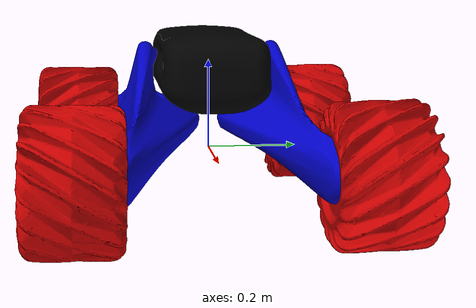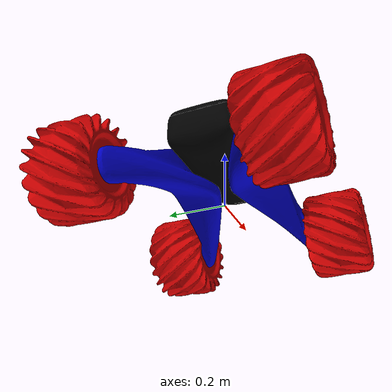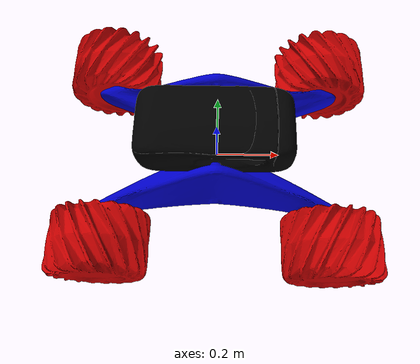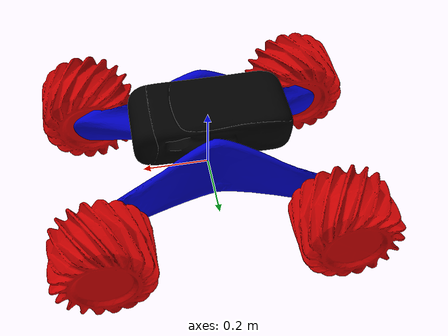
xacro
<?xml version="1.0"?>
<robot name="nimrod"
    xmlns:xacro="http://www.ros.org/wiki/xacro">

    <xacro:include filename="$(find rover_config)/urdf/body.xacro" />

    <!-- World link -->
    <!-- base_footprint is a fictious link(frame) that is on the ground right below base_link origin -->
    <!-- It is necessary as gazebo does not support inertia for the root link -->
    <!-- Do not call it world as it is reserved for robot that must be fixed to the world -->

    <link name="base_link">
    </link>

    <gazebo reference="base_link">
        <turnGravityOff>false</turnGravityOff>
    </gazebo>

    <!--   rover body macro   -->
    <body parent="base_link" translateX="0" translateY="0" translateZ="0.1"/>

    <!-- Publishing joint states from Gazebo simulator -->
    <!-- fixed links are not published -->
    <!-- this is required to publish wheel status -->
    <gazebo>
        <plugin name="joint_state_publisher" filename="libgazebo_ros_joint_state_publisher.so">
            <jointName>
            front_left_wheel_joint,
            front_right_wheel_joint,
            back_left_wheel_joint,
            back_right_wheel_joint,
            left_rocker_joint,
            right_rocker_joint
            </jointName>
            <robotNameSpace>/</robotNameSpace>
            <updateRate>100</updateRate>
            <alwaysOn>true</alwaysOn>
        </plugin>
    </gazebo>

    <gazebo>
        <plugin name="gazebo_ros_control" filename="libgazebo_ros_control.so">
            <robotNamespace>/</robotNamespace>
        </plugin>
    </gazebo>

    <gazebo>
        <plugin name="mimic_rocker" filename="libroboticsgroup_gazebo_mimic_joint_plugin.so">
            <joint>left_rocker_joint</joint>
            <mimicJoint>right_rocker_joint</mimicJoint>
            <multiplier>-1</multiplier>
            <hasPID />
        </plugin>
    </gazebo>

</robot>

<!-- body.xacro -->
<robot name="nimrod"
    xmlns:xacro="http://www.ros.org/wiki/xacro">

    <xacro:include filename="$(find rover_config)/urdf/wheel.xacro" />

    <!-- Defining the colors used in this robot -->

    <material name="Black">
        <color rgba="0.0 0.0 0.0 1.0"/>
    </material>

    <material name="Red">
        <color rgba="0.8 0.0 0.0 1.0"/>
    </material>

    <material name="White">
        <color rgba="1.0 1.0 1.0 1.0"/>
    </material>

    <material name="Blue">
        <color rgba="0.0 0.0 0.8 1.0"/>
    </material>

    <!-- Property list -->
    <!-- All units in m-kg-s-radians unit system -->

    <xacro:property name="M_PI" value="3.1415926535897931" />
    <xacro:property name="M_PI_2" value="1.570796327" />
    <xacro:property name="DEG_TO_RAD" value="0.017453293" />

    <!-- Main body length height width -->

    <xacro:property name="base_height" value="0.2" />
    <xacro:property name="base_width" value="0.2" />
    <xacro:property name="base_lenght" value="0.5" />
    <xacro:property name="base_mass" value="20.0" />

    <xacro:property name="rocker_height" value="0.1" />
    <xacro:property name="rocker_width" value="0.1" />
    <xacro:property name="rocker_lenght" value="0.7" />
    <xacro:property name="rocker_mass" value="2.0" />
    <xacro:property name="rocker_offsetZ" value="0" />

    <xacro:property name="camera_size" value="0.05" />

    <!-- Macro for calculating inertia of cylinder -->

    <xacro:macro name="cylinder_inertia" params="m r h">
        <inertia ixx="${ m * ( 3 * r*r + h*h ) / 12}" ixy="0" ixz="0" iyy="${ m * ( 3 * r*r + h*h ) / 12}" iyz="0" izz="${ m * r / 2}" />
    </xacro:macro>

    <!-- Macro for calculating inertia of a box -->

    <xacro:macro name="box_inertia" params="m x y z">
        <inertia ixx="${0.0833333 * m * (y*y + z*z)}" ixy="0.0" ixz="0.0" iyy="${0.0833333 * m * (x*x + z*z)}" iyz="0.0" izz="${0.0833333 * m * (x*x + y*y)}" />
    </xacro:macro>

    <!-- Base link -->
    <!-- Actual body/chassis of the robot -->

    <xacro:macro name="body" params="parent translateX translateY translateZ">

        <joint name="glue_robot_to_world" type="fixed">
            <origin xyz="${translateX} ${translateY} ${translateZ}" rpy="0 0 0" />
            <parent link="${parent}" />
            <child link="chassis" />
        </joint>

        <link name="chassis">
            <inertial>
                <mass value="${base_mass}" />
                <!-- the3x3 rotational inertia matrix -->
                <box_inertia m="${base_mass}" x="${base_lenght}" y="${base_width}" z="${base_height}" />
                <origin xyz="0 0 0" />
            </inertial>
            <visual>
                <origin xyz="0 0 0" rpy="0 0 ${radians(-90)}" />
                <geometry>
                    <mesh filename="package://rover_config/rover_collada/Body_lowPoly.dae"/>
                </geometry>
                <material name="Black" />
            </visual>
            <collision>
                <origin xyz="0 0 0" rpy="0 0 ${radians(-90)}" />
                <geometry>
                    <mesh filename="package://rover_config/rover_collada/Body_lowPoly.dae"/>
                </geometry>
                <material name="Black" />
            </collision>
        </link>

        <gazebo reference="chassis">
            <turnGravityOff>false</turnGravityOff>
        </gazebo>

        <xacro:macro name="rocker" params="side parent translateX translateY translateZ flipY">
            <link name="${side}_rocker">
                <visual>
                    <origin xyz="0 0 ${-rocker_offsetZ}" rpy="0 0 ${-90 * DEG_TO_RAD}"/>
                    <geometry>
                        <mesh filename="package://rover_config/rover_collada/Rocker_lowPoly.dae" scale="${flipY} 1 1"/>
                    </geometry>
                    <material name="Blue" />
                </visual>
                <collision>
                    <origin xyz="0 0 ${-rocker_offsetZ}" rpy="0 0 ${-90 * DEG_TO_RAD}"/>
                    <geometry>
                        <mesh filename="package://rover_config/rover_collada/Rocker_lowPoly.dae" scale="${flipY} 1 1"/>
                    </geometry>
                    <material name="Blue" />
                </collision>
                <inertial>
                    <mass value="${rocker_mass}" />
                    <origin xyz="0 ${flipY * rocker_width / 2} ${-rocker_offsetZ}" rpy="0 0 0"/>
                    <box_inertia m="${rocker_mass}" x="${rocker_lenght}" y="${rocker_width}" z="${rocker_height}" />
                </inertial>
            </link>

            <joint name="${side}_rocker_joint" type="revolute">
                <origin xyz="${translateX} ${translateY} ${translateZ}" rpy="0.0 0.0 0.0"/>
                <parent link="${parent}"/>
                <child link="${side}_rocker"/>
                <axis xyz="0 1 0"/>
                <dynamics damping="0" friction="0.5"/>
                <limit lower="${-8 * DEG_TO_RAD}" upper="${8 * DEG_TO_RAD}" velocity="1000" effort="1000"/>
            </joint>

            <transmission name="${side}_rocker_joint_trans">
                <type>transmission_interface/SimpleTransmission</type>
                <joint name="${side}_rocker_joint">
                    <hardwareInterface>hardware_interface/PositionJointInterface</hardwareInterface>
                </joint>
                <actuator name="${side}_rocker_joint_motor">
                    <hardwareInterface>hardware_interface/PositionJointInterface</hardwareInterface>
                    <mechanicalReduction>1</mechanicalReduction>
                </actuator>
            </transmission>

            <wheel fb="front" lr="${side}" parent="${side}_rocker" translateX="0.350" translateY="${flipY * 0.300}" translateZ="-0.100" flipY="${flipY}" flipZ="1"/>
            <wheel fb="back" lr="${side}" parent="${side}_rocker" translateX="-0.350" translateY="${flipY * 0.300}" translateZ="-0.100" flipY="${flipY}" flipZ="-1"/>

            <gazebo reference="${side}_rocker">
                <turnGravityOff>false</turnGravityOff>
            </gazebo>

        </xacro:macro>

        <rocker side="left" parent="chassis" translateX="0" translateY="0" translateZ="0" flipY="1" />
        <rocker side="right" parent="chassis" translateX="0" translateY="0" translateZ="0" flipY="-1" />

        <!-- Camera gazebo sensor -->

        <joint name="camera_joint" type="fixed">
            <axis xyz="0 1 0" />
            <origin xyz="${base_lenght / 2 + 2 * camera_size} 0 ${base_height / 2}" rpy="0 0 0"/>
            <parent link="chassis"/>
            <child link="camera_link"/>
        </joint>

        <link name="camera_link">
        </link>

        <link name="camera_link2">
        </link>

        <joint name="camera_joint2" type="fixed">
            <axis xyz="0 1 0" />
            <origin xyz="0 0 0" rpy="${-M_PI_2} 0 ${-M_PI_2}"/>
            <parent link="camera_link"/>
            <child link="camera_link2"/>
        </joint>

        <gazebo reference="camera_link">
            <sensor type="camera" name="camera1">
                <update_rate>30.0</update_rate>
                <camera name="head">
                    <horizontal_fov>${45 * DEG_TO_RAD}</horizontal_fov>
                    <image>
                        <width>2056</width>
                        <height>1542</height>
                        <format>R8G8B8</format>
                    </image>
                    <clip>
                        <near>0.02</near>
                        <far>300</far>
                    </clip>
                    <noise>
                        <type>gaussian</type>
                        <!-- Noise is sampled independently per pixel on each frame.
                That pixel's noise value is added to each of its color
                channels, which at that point lie in the range [0,1]. -->
                        <mean>0.0</mean>
                        <stddev>0.07</stddev>
                    </noise>
                </camera>
                <plugin name="camera_controller" filename="libgazebo_ros_camera.so">
                    <alwaysOn>true</alwaysOn>
                    <updateRate>0.0</updateRate>
                    <cameraName>sensors/camera1</cameraName>
                    <imageTopicName>image_raw</imageTopicName>
                    <cameraInfoTopicName>camera_info</cameraInfoTopicName>
                    <frameName>camera_link2</frameName>
                    <hackBaseline>0.0</hackBaseline>
                    <distortionK1>0.0</distortionK1>
                    <distortionK2>0.0</distortionK2>
                    <distortionK3>0.0</distortionK3>
                    <distortionT1>0.0</distortionT1>
                    <distortionT2>0.0</distortionT2>
                </plugin>
            </sensor>
        </gazebo>

        <!-- IMU plugin sensor -->
        <!-- computed by seperate plugin, without gravity -->
        <gazebo>
            <plugin name="imu_plugin" filename="libgazebo_ros_imu.so">
                <alwaysOn>true</alwaysOn>
                <bodyName>chassis</bodyName>
                <topicName>sensors/imu_plugin</topicName>
                <serviceName>imu_service</serviceName>
                <gaussianNoise>0.0</gaussianNoise>
                <updateRate>20.0</updateRate>
            </plugin>
        </gazebo>

        <!-- IMU gazebo sensor -->
        <!-- computed by gazebo, with gravity -->
        <gazebo reference="chassis">
            <gravity>true</gravity>
            <sensor name="imu_sensor" type="imu">
                <always_on>true</always_on>
                <update_rate>50</update_rate>
                <visualize>true</visualize>
                <topic>__default_topic__</topic>
                <plugin filename="libgazebo_ros_imu_sensor.so" name="imu_plugin">
                    <topicName>sensors/imu_gazebo</topicName>
                    <bodyName>chassis</bodyName>
                    <updateRateHZ>20.0</updateRateHZ>
                    <gaussianNoise>0.0</gaussianNoise>
                    <xyzOffset>0 0 0</xyzOffset>
                    <rpyOffset>0 0 0</rpyOffset>
                    <frameName>chassis</frameName>
                </plugin>
                <pose>0 0 0 0 0 0</pose>
            </sensor>
        </gazebo>

    </xacro:macro>

</robot>

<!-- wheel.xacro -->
<robot name="wheel"
    xmlns:xacro="http://www.ros.org/wiki/xacro">

    <xacro:property name="wheel_radius" value="0.14" />
    <xacro:property name="wheel_width" value="0.2" />
    <xacro:property name="wheel_mass" value="1" />
    <!-- in kg -->

    <xacro:property name="grouser_count" value="20" />

    <!-- Macro for calculating inertia of cylindric wheel -->
    <xacro:macro name="wheel_inertia" params="m r h">
        <inertia ixx="${ m * ( 3 * r*r + h*h ) / 12}" ixy="0" ixz="0" iyy="${ m * ( 3 * r*r + h*h ) / 12}" iyz="0" izz="${ m * r / 2}" />
    </xacro:macro>

    <xacro:macro name="grouser" params="links_qty max_qty parent flipY flipZ">

        <link name="${flipY}${flipZ}_${links_qty}">
            <collision>
                <origin xyz="0 0 ${wheel_radius - 0.025}" rpy="0 0 ${flipY * flipZ * 30 * DEG_TO_RAD}"/>
                <geometry>
                    <box size="0.01 ${wheel_width} 0.05"/>
                </geometry>
                <material name="Black" />
            </collision>
            <inertial>
                <mass value="0.01" />
                <origin xyz="0 ${flipY * wheel_width / 2} ${wheel_radius}" rpy="0 0 ${flipY * flipZ * 30 * DEG_TO_RAD}"/>
                <box_inertia m="0.01" x="0.01" y="${wheel_width}" z="0.05" />
            </inertial>
        </link>

        <joint name="${flipY}${flipZ}_${links_qty}_joint" type="fixed">
            <parent link="${parent}"/>
            <child link="${flipY}${flipZ}_${links_qty}" />
            <origin xyz="0.0 0.0 0.0" rpy="0 ${links_qty * 360 / max_qty * DEG_TO_RAD} 0" />
        </joint>

        <gazebo reference="${flipY}${flipZ}_${links_qty}">
            <mu1 value="100000"/>
            <mu2 value="0.25" />
            <fdir1 value="0.7071 ${-flipY * flipZ * 0.7071} 0" />

            <kp value="10000000.0" />
            <kd value="1.0" />
            <material>Gazebo/Black</material>
            <turnGravityOff>false</turnGravityOff>
        </gazebo>

        <xacro:if value="${links_qty}">
            <xacro:grouser links_qty="${links_qty - 1}" max_qty="${max_qty}" parent="${parent}" flipY="${flipY}" flipZ="${flipZ}" />
        </xacro:if>
    </xacro:macro>

    <xacro:macro name="wheel" params="fb lr parent translateX translateY translateZ flipY flipZ">

        <!-- fb: front, back; lr: left right -->
        <link name="${fb}_${lr}_wheel">
            <visual>
                <origin xyz="0 0 0" rpy="0 0 ${-90 * DEG_TO_RAD}"/>
                <!-- make sure the wheel is in the correct position -->
                <geometry>
                    <mesh filename="package://rover_config/rover_collada/Wheel_lowPoly.dae" scale="${-flipY * flipZ} 1 1"/>
                </geometry>
                <material name="Red" />
            </visual>
            <collision>
                <origin xyz="0 0 0" rpy="${flipY*M_PI/2} 0 0"/>
                <geometry>
                    <cylinder length="${wheel_width}" radius="${wheel_radius - 0.025}" />
                </geometry>
            </collision>
            <inertial>
                <mass value="${wheel_mass}" />
                <origin xyz="0 ${flipY * wheel_width / 2} 0" rpy="${flipY*M_PI/2} 0 0"/>
                <wheel_inertia m="${wheel_mass}" r="${wheel_radius}" h="${wheel_width}" />
            </inertial>
        </link>

        <gazebo reference="${fb}_${lr}_wheel">
            <turnGravityOff>false</turnGravityOff>
        </gazebo>

        <joint name="${fb}_${lr}_wheel_joint" type="continuous">
            <parent link="${parent}"/>
            <child link="${fb}_${lr}_wheel" />
            <origin xyz="${translateX} ${translateY} ${translateZ}" rpy="${flipY * 1 * DEG_TO_RAD} 0 0" />
            <limit effort="1000" velocity="1000" />
            <axis xyz="0 1 0" />
            <joint_properties damping="0.0" friction="0.0" />
            <type>transmission_interface/SimpleTransmission</type>
        </joint>

        <!-- Transmission is important to link the joint and the controller -->

        <transmission name="${fb}_${lr}_wheel_joint_trans">
            <type>transmission_interface/SimpleTransmission</type>
            <joint name="${fb}_${lr}_wheel_joint">
                <hardwareInterface>hardware_interface/VelocityJointInterface</hardwareInterface>
            </joint>
            <actuator name="${fb}_${lr}_wheel_joint_motor">
                <mechanicalReduction>1</mechanicalReduction>                <!-- It is not true: we uses motor with gearbox and ration of 75 -->
            </actuator>
        </transmission>

        <xacro:grouser links_qty="${grouser_count}" max_qty="${grouser_count}" parent="${fb}_${lr}_wheel" flipY="${flipY}" flipZ="${flipZ}"/>

    </xacro:macro>

</robot>
